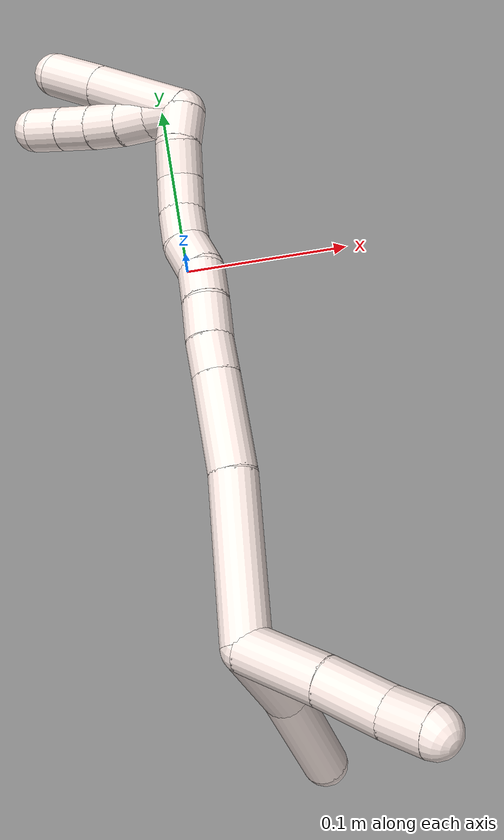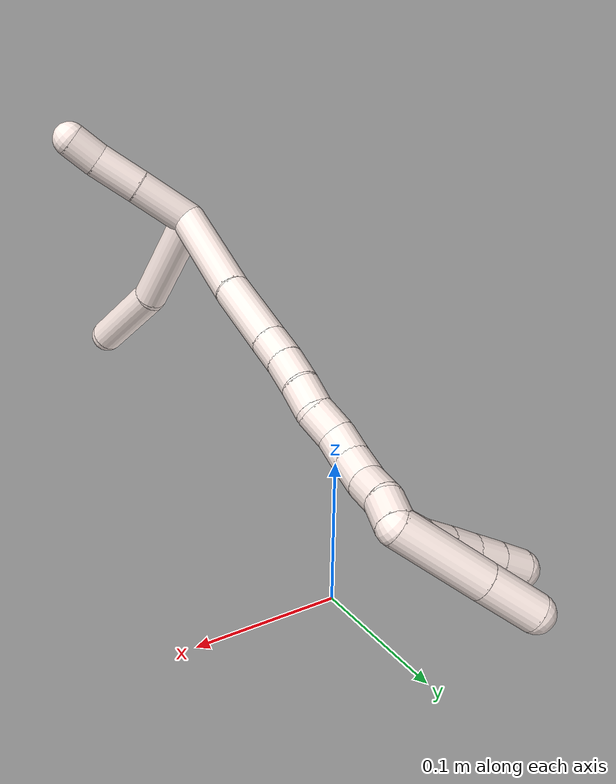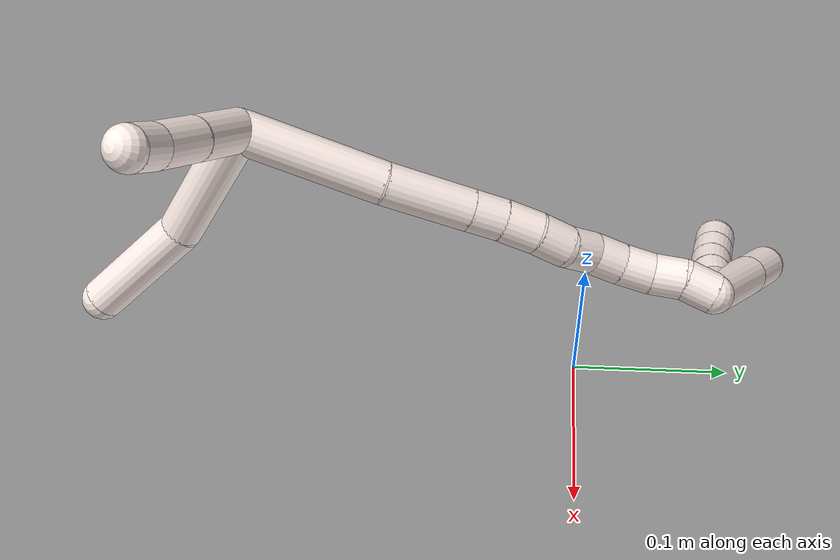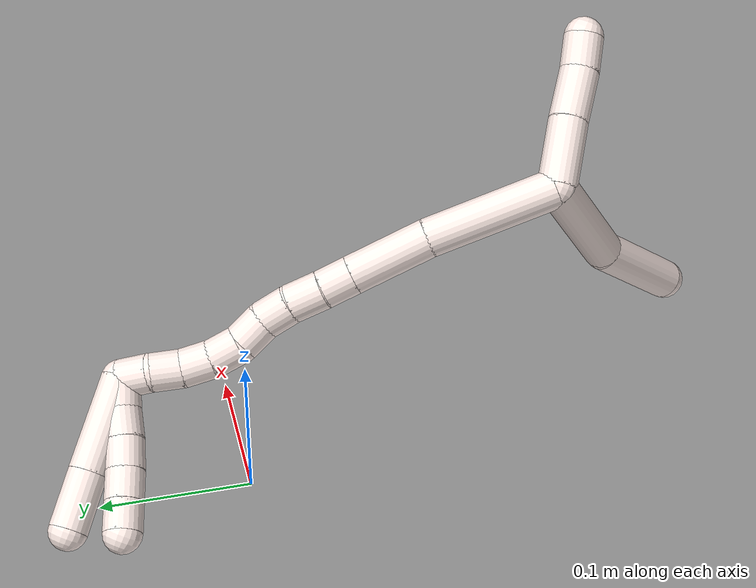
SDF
<sdf version="1.7">
 <world name="default">
  <model name="11">
   <static>0</static>
   <link name="11">
    <collision name="collision-cylinder-e_1_2_8">
     <pose>0.033521 -0.019071 -0.00958 2.03631 1.00385 1.45434</pose>
     <geometry><cylinder><radius>0.0125</radius><length>0.079477</length></cylinder></geometry>
     <surface>
      <friction><ode><mu>1.16</mu><mu2>1.16</mu2><slip1>0</slip1><slip2>0</slip2></ode></friction>
      <contact><ode><kp>1e+06</kp><kd>1</kd><max_vel>0</max_vel><min_depth>0.001</min_depth></ode></contact>
     </surface>
    </collision>
    <visual name="visual-cylinder-e_1_2_8">
     <pose>0.033521 -0.019071 -0.00958 2.03631 1.00385 1.45434</pose>
     <geometry><cylinder><radius>0.0125</radius><length>0.079477</length></cylinder></geometry>
     <material><ambient>1 0.933333 0.909804 1</ambient></material>
    </visual>
    <collision name="collision-cylinder-e_2_8_6">
     <pose>0.095168 -0.059383 -0.018078 1.51989 0.923333 0.883336</pose>
     <geometry><cylinder><radius>0.0125</radius><length>0.070523</length></cylinder></geometry>
     <surface>
      <friction><ode><mu>1.16</mu><mu2>1.16</mu2><slip1>0</slip1><slip2>0</slip2></ode></friction>
      <contact><ode><kp>1e+06</kp><kd>1</kd><max_vel>0</max_vel><min_depth>0.001</min_depth></ode></contact>
     </surface>
    </collision>
    <visual name="visual-cylinder-e_2_8_6">
     <pose>0.095168 -0.059383 -0.018078 1.51989 0.923333 0.883336</pose>
     <geometry><cylinder><radius>0.0125</radius><length>0.070523</length></cylinder></geometry>
     <material><ambient>1 0.933333 0.909804 1</ambient></material>
    </visual>
    <collision name="collision-cylinder-e_1_2_9">
     <pose>0.003997 0.004294 0.021024 -0.201459 0.184156 -0.018665</pose>
     <geometry><cylinder><radius>0.0125</radius><length>0.043654</length></cylinder></geometry>
     <surface>
      <friction><ode><mu>1.16</mu><mu2>1.16</mu2><slip1>0</slip1><slip2>0</slip2></ode></friction>
      <contact><ode><kp>1e+06</kp><kd>1</kd><max_vel>0</max_vel><min_depth>0.001</min_depth></ode></contact>
     </surface>
    </collision>
    <visual name="visual-cylinder-e_1_2_9">
     <pose>0.003997 0.004294 0.021024 -0.201459 0.184156 -0.018665</pose>
     <geometry><cylinder><radius>0.0125</radius><length>0.043654</length></cylinder></geometry>
     <material><ambient>1 0.933333 0.909804 1</ambient></material>
    </visual>
    <collision name="collision-cylinder-e_2_9_10">
     <pose>0.011355 0.011091 0.058382 -0.15206 0.200658 -0.015337</pose>
     <geometry><cylinder><radius>0.0125</radius><length>0.033728</length></cylinder></geometry>
     <surface>
      <friction><ode><mu>1.16</mu><mu2>1.16</mu2><slip1>0</slip1><slip2>0</slip2></ode></friction>
      <contact><ode><kp>1e+06</kp><kd>1</kd><max_vel>0</max_vel><min_depth>0.001</min_depth></ode></contact>
     </surface>
    </collision>
    <visual name="visual-cylinder-e_2_9_10">
     <pose>0.011355 0.011091 0.058382 -0.15206 0.200658 -0.015337</pose>
     <geometry><cylinder><radius>0.0125</radius><length>0.033728</length></cylinder></geometry>
     <material><ambient>1 0.933333 0.909804 1</ambient></material>
    </visual>
    <collision name="collision-cylinder-e_3_10_5">
     <pose>0.015844 0.016285 0.085644 -0.241487 0.099859 -0.012126</pose>
     <geometry><cylinder><radius>0.0125</radius><length>0.022619</length></cylinder></geometry>
     <surface>
      <friction><ode><mu>1.16</mu><mu2>1.16</mu2><slip1>0</slip1><slip2>0</slip2></ode></friction>
      <contact><ode><kp>1e+06</kp><kd>1</kd><max_vel>0</max_vel><min_depth>0.001</min_depth></ode></contact>
     </surface>
    </collision>
    <visual name="visual-cylinder-e_3_10_5">
     <pose>0.015844 0.016285 0.085644 -0.241487 0.099859 -0.012126</pose>
     <geometry><cylinder><radius>0.0125</radius><length>0.022619</length></cylinder></geometry>
     <material><ambient>1 0.933333 0.909804 1</ambient></material>
    </visual>
    <collision name="collision-cylinder-e_1_2_11">
     <pose>0.002924 0.031644 -0.027961 -2.29449 0.069138 -0.153115</pose>
     <geometry><cylinder><radius>0.0125</radius><length>0.084658</length></cylinder></geometry>
     <surface>
      <friction><ode><mu>1.16</mu><mu2>1.16</mu2><slip1>0</slip1><slip2>0</slip2></ode></friction>
      <contact><ode><kp>1e+06</kp><kd>1</kd><max_vel>0</max_vel><min_depth>0.001</min_depth></ode></contact>
     </surface>
    </collision>
    <visual name="visual-cylinder-e_1_2_11">
     <pose>0.002924 0.031644 -0.027961 -2.29449 0.069138 -0.153115</pose>
     <geometry><cylinder><radius>0.0125</radius><length>0.084658</length></cylinder></geometry>
     <material><ambient>1 0.933333 0.909804 1</ambient></material>
    </visual>
    <collision name="collision-cylinder-e_2_11_12">
     <pose>0.006641 0.081203 -0.074823 -2.38298 0.03041 -0.076259</pose>
     <geometry><cylinder><radius>0.0125</radius><length>0.052107</length></cylinder></geometry>
     <surface>
      <friction><ode><mu>1.16</mu><mu2>1.16</mu2><slip1>0</slip1><slip2>0</slip2></ode></friction>
      <contact><ode><kp>1e+06</kp><kd>1</kd><max_vel>0</max_vel><min_depth>0.001</min_depth></ode></contact>
     </surface>
    </collision>
    <visual name="visual-cylinder-e_2_11_12">
     <pose>0.006641 0.081203 -0.074823 -2.38298 0.03041 -0.076259</pose>
     <geometry><cylinder><radius>0.0125</radius><length>0.052107</length></cylinder></geometry>
     <material><ambient>1 0.933333 0.909804 1</ambient></material>
    </visual>
    <collision name="collision-cylinder-e_3_12_13">
     <pose>0.007686 0.106072 -0.101154 -2.3892 0.024922 -0.063076</pose>
     <geometry><cylinder><radius>0.0125</radius><length>0.020361</length></cylinder></geometry>
     <surface>
      <friction><ode><mu>1.16</mu><mu2>1.16</mu2><slip1>0</slip1><slip2>0</slip2></ode></friction>
      <contact><ode><kp>1e+06</kp><kd>1</kd><max_vel>0</max_vel><min_depth>0.001</min_depth></ode></contact>
     </surface>
    </collision>
    <visual name="visual-cylinder-e_3_12_13">
     <pose>0.007686 0.106072 -0.101154 -2.3892 0.024922 -0.063076</pose>
     <geometry><cylinder><radius>0.0125</radius><length>0.020361</length></cylinder></geometry>
     <material><ambient>1 0.933333 0.909804 1</ambient></material>
    </visual>
    <collision name="collision-cylinder-e_4_13_14">
     <pose>0.008853 0.120969 -0.116314 -2.3427 0.08214 -0.194078</pose>
     <geometry><cylinder><radius>0.0125</radius><length>0.022241</length></cylinder></geometry>
     <surface>
      <friction><ode><mu>1.16</mu><mu2>1.16</mu2><slip1>0</slip1><slip2>0</slip2></ode></friction>
      <contact><ode><kp>1e+06</kp><kd>1</kd><max_vel>0</max_vel><min_depth>0.001</min_depth></ode></contact>
     </surface>
    </collision>
    <visual name="visual-cylinder-e_4_13_14">
     <pose>0.008853 0.120969 -0.116314 -2.3427 0.08214 -0.194078</pose>
     <geometry><cylinder><radius>0.0125</radius><length>0.022241</length></cylinder></geometry>
     <material><ambient>1 0.933333 0.909804 1</ambient></material>
    </visual>
    <collision name="collision-cylinder-e_5_14_15">
     <pose>0.011345 0.135249 -0.131852 -2.4597 0.155809 -0.433135</pose>
     <geometry><cylinder><radius>0.0125</radius><length>0.020359</length></cylinder></geometry>
     <surface>
      <friction><ode><mu>1.16</mu><mu2>1.16</mu2><slip1>0</slip1><slip2>0</slip2></ode></friction>
      <contact><ode><kp>1e+06</kp><kd>1</kd><max_vel>0</max_vel><min_depth>0.001</min_depth></ode></contact>
     </surface>
    </collision>
    <visual name="visual-cylinder-e_5_14_15">
     <pose>0.011345 0.135249 -0.131852 -2.4597 0.155809 -0.433135</pose>
     <geometry><cylinder><radius>0.0125</radius><length>0.020359</length></cylinder></geometry>
     <material><ambient>1 0.933333 0.909804 1</ambient></material>
    </visual>
    <collision name="collision-cylinder-e_6_15_16">
     <pose>0.012961 0.145595 -0.14887 -2.73119 0.003659 -0.01758</pose>
     <geometry><cylinder><radius>0.0125</radius><length>0.02009</length></cylinder></geometry>
     <surface>
      <friction><ode><mu>1.16</mu><mu2>1.16</mu2><slip1>0</slip1><slip2>0</slip2></ode></friction>
      <contact><ode><kp>1e+06</kp><kd>1</kd><max_vel>0</max_vel><min_depth>0.001</min_depth></ode></contact>
     </surface>
    </collision>
    <visual name="visual-cylinder-e_6_15_16">
     <pose>0.012961 0.145595 -0.14887 -2.73119 0.003659 -0.01758</pose>
     <geometry><cylinder><radius>0.0125</radius><length>0.02009</length></cylinder></geometry>
     <material><ambient>1 0.933333 0.909804 1</ambient></material>
    </visual>
    <collision name="collision-cylinder-e_7_16_17">
     <pose>0.013988 0.156195 -0.165552 -2.41856 0.099072 -0.260728</pose>
     <geometry><cylinder><radius>0.0125</radius><length>0.020027</length></cylinder></geometry>
     <surface>
      <friction><ode><mu>1.16</mu><mu2>1.16</mu2><slip1>0</slip1><slip2>0</slip2></ode></friction>
      <contact><ode><kp>1e+06</kp><kd>1</kd><max_vel>0</max_vel><min_depth>0.001</min_depth></ode></contact>
     </surface>
    </collision>
    <visual name="visual-cylinder-e_7_16_17">
     <pose>0.013988 0.156195 -0.165552 -2.41856 0.099072 -0.260728</pose>
     <geometry><cylinder><radius>0.0125</radius><length>0.020027</length></cylinder></geometry>
     <material><ambient>1 0.933333 0.909804 1</ambient></material>
    </visual>
    <collision name="collision-cylinder-e_8_17_18">
     <pose>0.01522 0.17068 -0.179224 -2.23681 0.02401 -0.049396</pose>
     <geometry><cylinder><radius>0.0125</radius><length>0.020078</length></cylinder></geometry>
     <surface>
      <friction><ode><mu>1.16</mu><mu2>1.16</mu2><slip1>0</slip1><slip2>0</slip2></ode></friction>
      <contact><ode><kp>1e+06</kp><kd>1</kd><max_vel>0</max_vel><min_depth>0.001</min_depth></ode></contact>
     </surface>
    </collision>
    <visual name="visual-cylinder-e_8_17_18">
     <pose>0.01522 0.17068 -0.179224 -2.23681 0.02401 -0.049396</pose>
     <geometry><cylinder><radius>0.0125</radius><length>0.020078</length></cylinder></geometry>
     <material><ambient>1 0.933333 0.909804 1</ambient></material>
    </visual>
    <collision name="collision-cylinder-e_9_18_19">
     <pose>0.014196 0.187279 -0.19025 -2.07678 -0.126359 0.21394</pose>
     <geometry><cylinder><radius>0.0125</radius><length>0.020071</length></cylinder></geometry>
     <surface>
      <friction><ode><mu>1.16</mu><mu2>1.16</mu2><slip1>0</slip1><slip2>0</slip2></ode></friction>
      <contact><ode><kp>1e+06</kp><kd>1</kd><max_vel>0</max_vel><min_depth>0.001</min_depth></ode></contact>
     </surface>
    </collision>
    <visual name="visual-cylinder-e_9_18_19">
     <pose>0.014196 0.187279 -0.19025 -2.07678 -0.126359 0.21394</pose>
     <geometry><cylinder><radius>0.0125</radius><length>0.020071</length></cylinder></geometry>
     <material><ambient>1 0.933333 0.909804 1</ambient></material>
    </visual>
    <collision name="collision-cylinder-e_10_19_1">
     <pose>0.014424 0.204409 -0.200266 -2.12315 0.149765 -0.267136</pose>
     <geometry><cylinder><radius>0.0125</radius><length>0.020008</length></cylinder></geometry>
     <surface>
      <friction><ode><mu>1.16</mu><mu2>1.16</mu2><slip1>0</slip1><slip2>0</slip2></ode></friction>
      <contact><ode><kp>1e+06</kp><kd>1</kd><max_vel>0</max_vel><min_depth>0.001</min_depth></ode></contact>
     </surface>
    </collision>
    <visual name="visual-cylinder-e_10_19_1">
     <pose>0.014424 0.204409 -0.200266 -2.12315 0.149765 -0.267136</pose>
     <geometry><cylinder><radius>0.0125</radius><length>0.020008</length></cylinder></geometry>
     <material><ambient>1 0.933333 0.909804 1</ambient></material>
    </visual>
    <collision name="collision-cylinder-e_1_1_20">
     <pose>0.009783 0.210394 -0.23592 3.06181 -0.198079 -2.37767</pose>
     <geometry><cylinder><radius>0.0125</radius><length>0.062342</length></cylinder></geometry>
     <surface>
      <friction><ode><mu>1.16</mu><mu2>1.16</mu2><slip1>0</slip1><slip2>0</slip2></ode></friction>
      <contact><ode><kp>1e+06</kp><kd>1</kd><max_vel>0</max_vel><min_depth>0.001</min_depth></ode></contact>
     </surface>
    </collision>
    <visual name="visual-cylinder-e_1_1_20">
     <pose>0.009783 0.210394 -0.23592 3.06181 -0.198079 -2.37767</pose>
     <geometry><cylinder><radius>0.0125</radius><length>0.062342</length></cylinder></geometry>
     <material><ambient>1 0.933333 0.909804 1</ambient></material>
    </visual>
    <collision name="collision-cylinder-e_2_20_4">
     <pose>-0.00011 0.206234 -0.284754 3.04802 -0.200986 -2.27215</pose>
     <geometry><cylinder><radius>0.0125</radius><length>0.037658</length></cylinder></geometry>
     <surface>
      <friction><ode><mu>1.16</mu><mu2>1.16</mu2><slip1>0</slip1><slip2>0</slip2></ode></friction>
      <contact><ode><kp>1e+06</kp><kd>1</kd><max_vel>0</max_vel><min_depth>0.001</min_depth></ode></contact>
     </surface>
    </collision>
    <visual name="visual-cylinder-e_2_20_4">
     <pose>-0.00011 0.206234 -0.284754 3.04802 -0.200986 -2.27215</pose>
     <geometry><cylinder><radius>0.0125</radius><length>0.037658</length></cylinder></geometry>
     <material><ambient>1 0.933333 0.909804 1</ambient></material>
    </visual>
    <collision name="collision-cylinder-e_1_1_21">
     <pose>0.014451 0.208642 -0.214418 2.70443 -0.147137 -0.64073</pose>
     <geometry><cylinder><radius>0.0125</radius><length>0.02</length></cylinder></geometry>
     <surface>
      <friction><ode><mu>1.16</mu><mu2>1.16</mu2><slip1>0</slip1><slip2>0</slip2></ode></friction>
      <contact><ode><kp>1e+06</kp><kd>1</kd><max_vel>0</max_vel><min_depth>0.001</min_depth></ode></contact>
     </surface>
    </collision>
    <visual name="visual-cylinder-e_1_1_21">
     <pose>0.014451 0.208642 -0.214418 2.70443 -0.147137 -0.64073</pose>
     <geometry><cylinder><radius>0.0125</radius><length>0.02</length></cylinder></geometry>
     <material><ambient>1 0.933333 0.909804 1</ambient></material>
    </visual>
    <collision name="collision-cylinder-e_2_21_22">
     <pose>0.010214 0.199411 -0.231558 2.58909 -0.28074 -0.924749</pose>
     <geometry><cylinder><radius>0.0125</radius><length>0.02</length></cylinder></geometry>
     <surface>
      <friction><ode><mu>1.16</mu><mu2>1.16</mu2><slip1>0</slip1><slip2>0</slip2></ode></friction>
      <contact><ode><kp>1e+06</kp><kd>1</kd><max_vel>0</max_vel><min_depth>0.001</min_depth></ode></contact>
     </surface>
    </collision>
    <visual name="visual-cylinder-e_2_21_22">
     <pose>0.010214 0.199411 -0.231558 2.58909 -0.28074 -0.924749</pose>
     <geometry><cylinder><radius>0.0125</radius><length>0.02</length></cylinder></geometry>
     <material><ambient>1 0.933333 0.909804 1</ambient></material>
    </visual>
    <collision name="collision-cylinder-e_3_22_23">
     <pose>0.004483 0.190123 -0.248294 2.68108 -0.300556 -1.14705</pose>
     <geometry><cylinder><radius>0.0125</radius><length>0.02</length></cylinder></geometry>
     <surface>
      <friction><ode><mu>1.16</mu><mu2>1.16</mu2><slip1>0</slip1><slip2>0</slip2></ode></friction>
      <contact><ode><kp>1e+06</kp><kd>1</kd><max_vel>0</max_vel><min_depth>0.001</min_depth></ode></contact>
     </surface>
    </collision>
    <visual name="visual-cylinder-e_3_22_23">
     <pose>0.004483 0.190123 -0.248294 2.68108 -0.300556 -1.14705</pose>
     <geometry><cylinder><radius>0.0125</radius><length>0.02</length></cylinder></geometry>
     <material><ambient>1 0.933333 0.909804 1</ambient></material>
    </visual>
    <collision name="collision-cylinder-e_4_23_24">
     <pose>-0.00173 0.182079 -0.26551 2.72811 -0.331209 -1.34567</pose>
     <geometry><cylinder><radius>0.0125</radius><length>0.02</length></cylinder></geometry>
     <surface>
      <friction><ode><mu>1.16</mu><mu2>1.16</mu2><slip1>0</slip1><slip2>0</slip2></ode></friction>
      <contact><ode><kp>1e+06</kp><kd>1</kd><max_vel>0</max_vel><min_depth>0.001</min_depth></ode></contact>
     </surface>
    </collision>
    <visual name="visual-cylinder-e_4_23_24">
     <pose>-0.00173 0.182079 -0.26551 2.72811 -0.331209 -1.34567</pose>
     <geometry><cylinder><radius>0.0125</radius><length>0.02</length></cylinder></geometry>
     <material><ambient>1 0.933333 0.909804 1</ambient></material>
    </visual>
    <collision name="collision-cylinder-e_5_24_3">
     <pose>-0.008119 0.174518 -0.282888 2.7343 -0.319165 -1.32411</pose>
     <geometry><cylinder><radius>0.0125</radius><length>0.02</length></cylinder></geometry>
     <surface>
      <friction><ode><mu>1.16</mu><mu2>1.16</mu2><slip1>0</slip1><slip2>0</slip2></ode></friction>
      <contact><ode><kp>1e+06</kp><kd>1</kd><max_vel>0</max_vel><min_depth>0.001</min_depth></ode></contact>
     </surface>
    </collision>
    <visual name="visual-cylinder-e_5_24_3">
     <pose>-0.008119 0.174518 -0.282888 2.7343 -0.319165 -1.32411</pose>
     <geometry><cylinder><radius>0.0125</radius><length>0.02</length></cylinder></geometry>
     <material><ambient>1 0.933333 0.909804 1</ambient></material>
    </visual>
    <collision name="collision-sphere-3">
     <pose>-0.011257 0.170757 -0.291606 0 -0 0</pose>
     <geometry><sphere><radius>0.0125</radius></sphere></geometry>
     <surface>
      <friction><ode><mu>1.16</mu><mu2>1.16</mu2><slip1>0</slip1><slip2>0</slip2></ode></friction>
      <contact><ode><kp>1e+06</kp><kd>1</kd><max_vel>0</max_vel><min_depth>0.001</min_depth></ode></contact>
     </surface>
    </collision>
    <visual name="visual-sphere-3">
     <pose>-0.011257 0.170757 -0.291606 0 -0 0</pose>
     <geometry><sphere><radius>0.0125</radius></sphere></geometry>
     <material><ambient>1 0.933333 0.909804 1</ambient></material>
    </visual>
    <collision name="collision-sphere-24">
     <pose>-0.004982 0.178279 -0.27417 0 -0 0</pose>
     <geometry><sphere><radius>0.0125</radius></sphere></geometry>
     <surface>
      <friction><ode><mu>1.16</mu><mu2>1.16</mu2><slip1>0</slip1><slip2>0</slip2></ode></friction>
      <contact><ode><kp>1e+06</kp><kd>1</kd><max_vel>0</max_vel><min_depth>0.001</min_depth></ode></contact>
     </surface>
    </collision>
    <visual name="visual-sphere-24">
     <pose>-0.004982 0.178279 -0.27417 0 -0 0</pose>
     <geometry><sphere><radius>0.0125</radius></sphere></geometry>
     <material><ambient>1 0.933333 0.909804 1</ambient></material>
    </visual>
    <collision name="collision-sphere-23">
     <pose>0.001522 0.185879 -0.256851 0 -0 0</pose>
     <geometry><sphere><radius>0.0125</radius></sphere></geometry>
     <surface>
      <friction><ode><mu>1.16</mu><mu2>1.16</mu2><slip1>0</slip1><slip2>0</slip2></ode></friction>
      <contact><ode><kp>1e+06</kp><kd>1</kd><max_vel>0</max_vel><min_depth>0.001</min_depth></ode></contact>
     </surface>
    </collision>
    <visual name="visual-sphere-23">
     <pose>0.001522 0.185879 -0.256851 0 -0 0</pose>
     <geometry><sphere><radius>0.0125</radius></sphere></geometry>
     <material><ambient>1 0.933333 0.909804 1</ambient></material>
    </visual>
    <collision name="collision-sphere-22">
     <pose>0.007443 0.194368 -0.239737 0 -0 0</pose>
     <geometry><sphere><radius>0.0125</radius></sphere></geometry>
     <surface>
      <friction><ode><mu>1.16</mu><mu2>1.16</mu2><slip1>0</slip1><slip2>0</slip2></ode></friction>
      <contact><ode><kp>1e+06</kp><kd>1</kd><max_vel>0</max_vel><min_depth>0.001</min_depth></ode></contact>
     </surface>
    </collision>
    <visual name="visual-sphere-22">
     <pose>0.007443 0.194368 -0.239737 0 -0 0</pose>
     <geometry><sphere><radius>0.0125</radius></sphere></geometry>
     <material><ambient>1 0.933333 0.909804 1</ambient></material>
    </visual>
    <collision name="collision-sphere-21">
     <pose>0.012984 0.204454 -0.223379 0 -0 0</pose>
     <geometry><sphere><radius>0.0125</radius></sphere></geometry>
     <surface>
      <friction><ode><mu>1.16</mu><mu2>1.16</mu2><slip1>0</slip1><slip2>0</slip2></ode></friction>
      <contact><ode><kp>1e+06</kp><kd>1</kd><max_vel>0</max_vel><min_depth>0.001</min_depth></ode></contact>
     </surface>
    </collision>
    <visual name="visual-sphere-21">
     <pose>0.012984 0.204454 -0.223379 0 -0 0</pose>
     <geometry><sphere><radius>0.0125</radius></sphere></geometry>
     <material><ambient>1 0.933333 0.909804 1</ambient></material>
    </visual>
    <collision name="collision-sphere-4">
     <pose>-0.003869 0.20451 -0.303123 0 -0 0</pose>
     <geometry><sphere><radius>0.0125</radius></sphere></geometry>
     <surface>
      <friction><ode><mu>1.16</mu><mu2>1.16</mu2><slip1>0</slip1><slip2>0</slip2></ode></friction>
      <contact><ode><kp>1e+06</kp><kd>1</kd><max_vel>0</max_vel><min_depth>0.001</min_depth></ode></contact>
     </surface>
    </collision>
    <visual name="visual-sphere-4">
     <pose>-0.003869 0.20451 -0.303123 0 -0 0</pose>
     <geometry><sphere><radius>0.0125</radius></sphere></geometry>
     <material><ambient>1 0.933333 0.909804 1</ambient></material>
    </visual>
    <collision name="collision-sphere-20">
     <pose>0.003648 0.207958 -0.266385 0 -0 0</pose>
     <geometry><sphere><radius>0.0125</radius></sphere></geometry>
     <surface>
      <friction><ode><mu>1.16</mu><mu2>1.16</mu2><slip1>0</slip1><slip2>0</slip2></ode></friction>
      <contact><ode><kp>1e+06</kp><kd>1</kd><max_vel>0</max_vel><min_depth>0.001</min_depth></ode></contact>
     </surface>
    </collision>
    <visual name="visual-sphere-20">
     <pose>0.003648 0.207958 -0.266385 0 -0 0</pose>
     <geometry><sphere><radius>0.0125</radius></sphere></geometry>
     <material><ambient>1 0.933333 0.909804 1</ambient></material>
    </visual>
    <collision name="collision-sphere-5">
     <pose>0.016971 0.018976 0.09657 0 -0 0</pose>
     <geometry><sphere><radius>0.0125</radius></sphere></geometry>
     <surface>
      <friction><ode><mu>1.16</mu><mu2>1.16</mu2><slip1>0</slip1><slip2>0</slip2></ode></friction>
      <contact><ode><kp>1e+06</kp><kd>1</kd><max_vel>0</max_vel><min_depth>0.001</min_depth></ode></contact>
     </surface>
    </collision>
    <visual name="visual-sphere-5">
     <pose>0.016971 0.018976 0.09657 0 -0 0</pose>
     <geometry><sphere><radius>0.0125</radius></sphere></geometry>
     <material><ambient>1 0.933333 0.909804 1</ambient></material>
    </visual>
    <collision name="collision-sphere-10">
     <pose>0.014716 0.013594 0.074717 0 -0 0</pose>
     <geometry><sphere><radius>0.0125</radius></sphere></geometry>
     <surface>
      <friction><ode><mu>1.16</mu><mu2>1.16</mu2><slip1>0</slip1><slip2>0</slip2></ode></friction>
      <contact><ode><kp>1e+06</kp><kd>1</kd><max_vel>0</max_vel><min_depth>0.001</min_depth></ode></contact>
     </surface>
    </collision>
    <visual name="visual-sphere-10">
     <pose>0.014716 0.013594 0.074717 0 -0 0</pose>
     <geometry><sphere><radius>0.0125</radius></sphere></geometry>
     <material><ambient>1 0.933333 0.909804 1</ambient></material>
    </visual>
    <collision name="collision-sphere-6">
     <pose>0.123293 -0.080624 -0.016995 0 -0 0</pose>
     <geometry><sphere><radius>0.0125</radius></sphere></geometry>
     <surface>
      <friction><ode><mu>1.16</mu><mu2>1.16</mu2><slip1>0</slip1><slip2>0</slip2></ode></friction>
      <contact><ode><kp>1e+06</kp><kd>1</kd><max_vel>0</max_vel><min_depth>0.001</min_depth></ode></contact>
     </surface>
    </collision>
    <visual name="visual-sphere-6">
     <pose>0.123293 -0.080624 -0.016995 0 -0 0</pose>
     <geometry><sphere><radius>0.0125</radius></sphere></geometry>
     <material><ambient>1 0.933333 0.909804 1</ambient></material>
    </visual>
    <collision name="collision-sphere-9">
     <pose>0.007994 0.008587 0.042048 0 -0 0</pose>
     <geometry><sphere><radius>0.0125</radius></sphere></geometry>
     <surface>
      <friction><ode><mu>1.16</mu><mu2>1.16</mu2><slip1>0</slip1><slip2>0</slip2></ode></friction>
      <contact><ode><kp>1e+06</kp><kd>1</kd><max_vel>0</max_vel><min_depth>0.001</min_depth></ode></contact>
     </surface>
    </collision>
    <visual name="visual-sphere-9">
     <pose>0.007994 0.008587 0.042048 0 -0 0</pose>
     <geometry><sphere><radius>0.0125</radius></sphere></geometry>
     <material><ambient>1 0.933333 0.909804 1</ambient></material>
    </visual>
    <collision name="collision-sphere-2">
     <geometry><sphere><radius>0.0125</radius></sphere></geometry>
     <surface>
      <friction><ode><mu>1.16</mu><mu2>1.16</mu2><slip1>0</slip1><slip2>0</slip2></ode></friction>
      <contact><ode><kp>1e+06</kp><kd>1</kd><max_vel>0</max_vel><min_depth>0.001</min_depth></ode></contact>
     </surface>
    </collision>
    <visual name="visual-sphere-2">
     <geometry><sphere><radius>0.0125</radius></sphere></geometry>
     <material><ambient>1 0.933333 0.909804 1</ambient></material>
    </visual>
    <collision name="collision-sphere-19">
     <pose>0.012931 0.195987 -0.195075 0 -0 0</pose>
     <geometry><sphere><radius>0.0125</radius></sphere></geometry>
     <surface>
      <friction><ode><mu>1.16</mu><mu2>1.16</mu2><slip1>0</slip1><slip2>0</slip2></ode></friction>
      <contact><ode><kp>1e+06</kp><kd>1</kd><max_vel>0</max_vel><min_depth>0.001</min_depth></ode></contact>
     </surface>
    </collision>
    <visual name="visual-sphere-19">
     <pose>0.012931 0.195987 -0.195075 0 -0 0</pose>
     <geometry><sphere><radius>0.0125</radius></sphere></geometry>
     <material><ambient>1 0.933333 0.909804 1</ambient></material>
    </visual>
    <collision name="collision-sphere-8">
     <pose>0.067043 -0.038142 -0.01916 0 -0 0</pose>
     <geometry><sphere><radius>0.0125</radius></sphere></geometry>
     <surface>
      <friction><ode><mu>1.16</mu><mu2>1.16</mu2><slip1>0</slip1><slip2>0</slip2></ode></friction>
      <contact><ode><kp>1e+06</kp><kd>1</kd><max_vel>0</max_vel><min_depth>0.001</min_depth></ode></contact>
     </surface>
    </collision>
    <visual name="visual-sphere-8">
     <pose>0.067043 -0.038142 -0.01916 0 -0 0</pose>
     <geometry><sphere><radius>0.0125</radius></sphere></geometry>
     <material><ambient>1 0.933333 0.909804 1</ambient></material>
    </visual>
    <collision name="collision-sphere-11">
     <pose>0.005848 0.063288 -0.055923 0 -0 0</pose>
     <geometry><sphere><radius>0.0125</radius></sphere></geometry>
     <surface>
      <friction><ode><mu>1.16</mu><mu2>1.16</mu2><slip1>0</slip1><slip2>0</slip2></ode></friction>
      <contact><ode><kp>1e+06</kp><kd>1</kd><max_vel>0</max_vel><min_depth>0.001</min_depth></ode></contact>
     </surface>
    </collision>
    <visual name="visual-sphere-11">
     <pose>0.005848 0.063288 -0.055923 0 -0 0</pose>
     <geometry><sphere><radius>0.0125</radius></sphere></geometry>
     <material><ambient>1 0.933333 0.909804 1</ambient></material>
    </visual>
    <collision name="collision-sphere-12">
     <pose>0.007433 0.099117 -0.093724 0 -0 0</pose>
     <geometry><sphere><radius>0.0125</radius></sphere></geometry>
     <surface>
      <friction><ode><mu>1.16</mu><mu2>1.16</mu2><slip1>0</slip1><slip2>0</slip2></ode></friction>
      <contact><ode><kp>1e+06</kp><kd>1</kd><max_vel>0</max_vel><min_depth>0.001</min_depth></ode></contact>
     </surface>
    </collision>
    <visual name="visual-sphere-12">
     <pose>0.007433 0.099117 -0.093724 0 -0 0</pose>
     <geometry><sphere><radius>0.0125</radius></sphere></geometry>
     <material><ambient>1 0.933333 0.909804 1</ambient></material>
    </visual>
    <collision name="collision-sphere-13">
     <pose>0.00794 0.113027 -0.108584 0 -0 0</pose>
     <geometry><sphere><radius>0.0125</radius></sphere></geometry>
     <surface>
      <friction><ode><mu>1.16</mu><mu2>1.16</mu2><slip1>0</slip1><slip2>0</slip2></ode></friction>
      <contact><ode><kp>1e+06</kp><kd>1</kd><max_vel>0</max_vel><min_depth>0.001</min_depth></ode></contact>
     </surface>
    </collision>
    <visual name="visual-sphere-13">
     <pose>0.00794 0.113027 -0.108584 0 -0 0</pose>
     <geometry><sphere><radius>0.0125</radius></sphere></geometry>
     <material><ambient>1 0.933333 0.909804 1</ambient></material>
    </visual>
    <collision name="collision-sphere-14">
     <pose>0.009765 0.128911 -0.124045 0 -0 0</pose>
     <geometry><sphere><radius>0.0125</radius></sphere></geometry>
     <surface>
      <friction><ode><mu>1.16</mu><mu2>1.16</mu2><slip1>0</slip1><slip2>0</slip2></ode></friction>
      <contact><ode><kp>1e+06</kp><kd>1</kd><max_vel>0</max_vel><min_depth>0.001</min_depth></ode></contact>
     </surface>
    </collision>
    <visual name="visual-sphere-14">
     <pose>0.009765 0.128911 -0.124045 0 -0 0</pose>
     <geometry><sphere><radius>0.0125</radius></sphere></geometry>
     <material><ambient>1 0.933333 0.909804 1</ambient></material>
    </visual>
    <collision name="collision-sphere-15">
     <pose>0.012924 0.141587 -0.13966 0 -0 0</pose>
     <geometry><sphere><radius>0.0125</radius></sphere></geometry>
     <surface>
      <friction><ode><mu>1.16</mu><mu2>1.16</mu2><slip1>0</slip1><slip2>0</slip2></ode></friction>
      <contact><ode><kp>1e+06</kp><kd>1</kd><max_vel>0</max_vel><min_depth>0.001</min_depth></ode></contact>
     </surface>
    </collision>
    <visual name="visual-sphere-15">
     <pose>0.012924 0.141587 -0.13966 0 -0 0</pose>
     <geometry><sphere><radius>0.0125</radius></sphere></geometry>
     <material><ambient>1 0.933333 0.909804 1</ambient></material>
    </visual>
    <collision name="collision-sphere-16">
     <pose>0.012998 0.149602 -0.158081 0 -0 0</pose>
     <geometry><sphere><radius>0.0125</radius></sphere></geometry>
     <surface>
      <friction><ode><mu>1.16</mu><mu2>1.16</mu2><slip1>0</slip1><slip2>0</slip2></ode></friction>
      <contact><ode><kp>1e+06</kp><kd>1</kd><max_vel>0</max_vel><min_depth>0.001</min_depth></ode></contact>
     </surface>
    </collision>
    <visual name="visual-sphere-16">
     <pose>0.012998 0.149602 -0.158081 0 -0 0</pose>
     <geometry><sphere><radius>0.0125</radius></sphere></geometry>
     <material><ambient>1 0.933333 0.909804 1</ambient></material>
    </visual>
    <collision name="collision-sphere-17">
     <pose>0.014979 0.162788 -0.173023 0 -0 0</pose>
     <geometry><sphere><radius>0.0125</radius></sphere></geometry>
     <surface>
      <friction><ode><mu>1.16</mu><mu2>1.16</mu2><slip1>0</slip1><slip2>0</slip2></ode></friction>
      <contact><ode><kp>1e+06</kp><kd>1</kd><max_vel>0</max_vel><min_depth>0.001</min_depth></ode></contact>
     </surface>
    </collision>
    <visual name="visual-sphere-17">
     <pose>0.014979 0.162788 -0.173023 0 -0 0</pose>
     <geometry><sphere><radius>0.0125</radius></sphere></geometry>
     <material><ambient>1 0.933333 0.909804 1</ambient></material>
    </visual>
    <collision name="collision-sphere-18">
     <pose>0.015461 0.178571 -0.185425 0 -0 0</pose>
     <geometry><sphere><radius>0.0125</radius></sphere></geometry>
     <surface>
      <friction><ode><mu>1.16</mu><mu2>1.16</mu2><slip1>0</slip1><slip2>0</slip2></ode></friction>
      <contact><ode><kp>1e+06</kp><kd>1</kd><max_vel>0</max_vel><min_depth>0.001</min_depth></ode></contact>
     </surface>
    </collision>
    <visual name="visual-sphere-18">
     <pose>0.015461 0.178571 -0.185425 0 -0 0</pose>
     <geometry><sphere><radius>0.0125</radius></sphere></geometry>
     <material><ambient>1 0.933333 0.909804 1</ambient></material>
    </visual>
    <collision name="collision-sphere-1">
     <pose>0.015917 0.21283 -0.205456 0 -0 0</pose>
     <geometry><sphere><radius>0.0125</radius></sphere></geometry>
     <surface>
      <friction><ode><mu>1.16</mu><mu2>1.16</mu2><slip1>0</slip1><slip2>0</slip2></ode></friction>
      <contact><ode><kp>1e+06</kp><kd>1</kd><max_vel>0</max_vel><min_depth>0.001</min_depth></ode></contact>
     </surface>
    </collision>
    <visual name="visual-sphere-1">
     <pose>0.015917 0.21283 -0.205456 0 -0 0</pose>
     <geometry><sphere><radius>0.0125</radius></sphere></geometry>
     <material><ambient>1 0.933333 0.909804 1</ambient></material>
    </visual>
    <inertial>
     <pose>0.018508 0.089396 -0.105098 0 -0 0</pose>
     <mass>0.75</mass>
     <inertia>
      <ixx>0.000102</ixx>
      <ixy>0</ixy>
      <ixz>0</ixz>
      <iyy>4.2e-05</iyy>
      <iyz>0</iyz>
      <izz>-0.000102</izz>
     </inertia>
    </inertial>
   </link>
   <pose>-0.001561 -0.197211 0.210089 0.277085 0.761802 -0.358675</pose>
  </model>
 </world>
</sdf>
